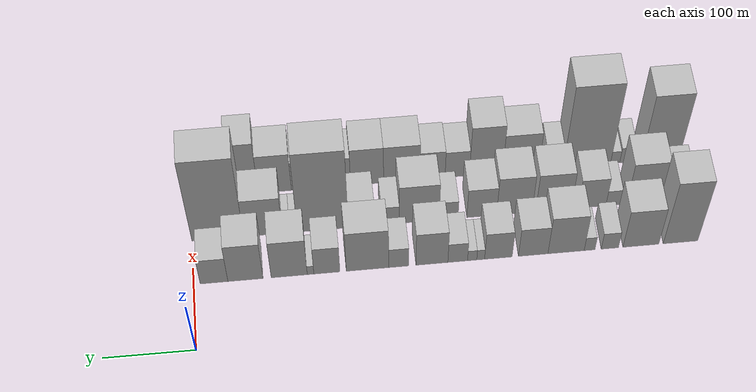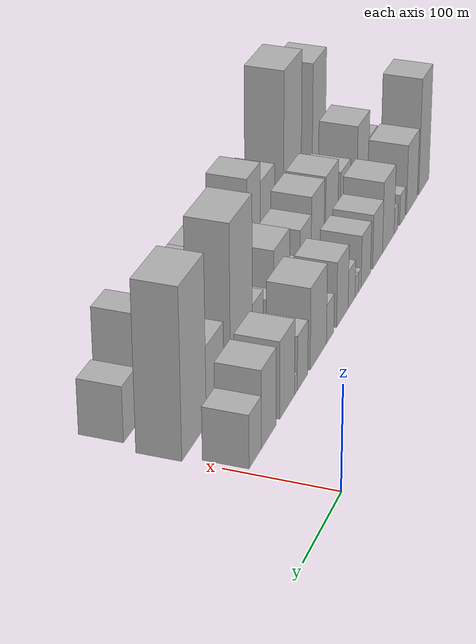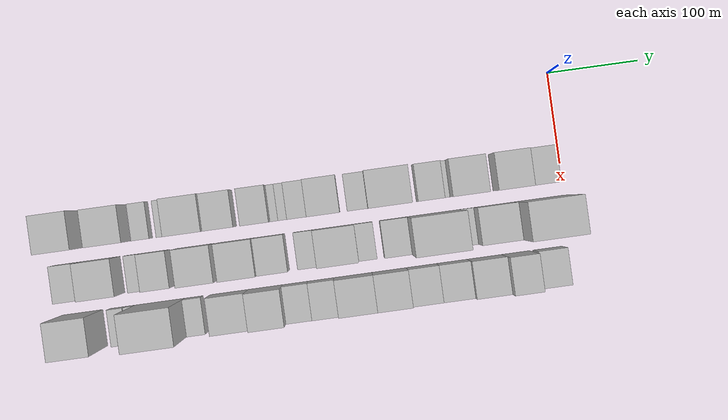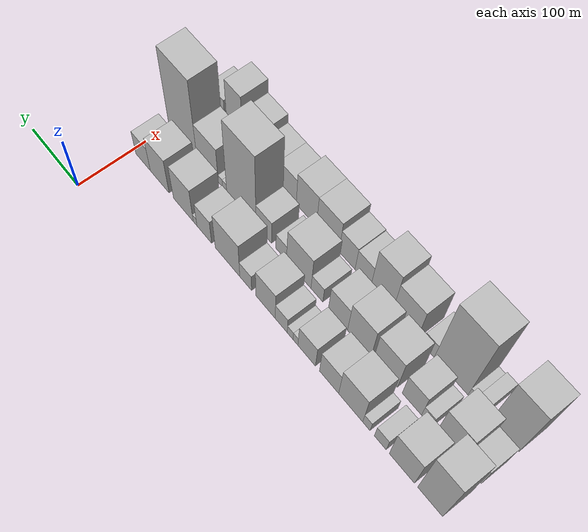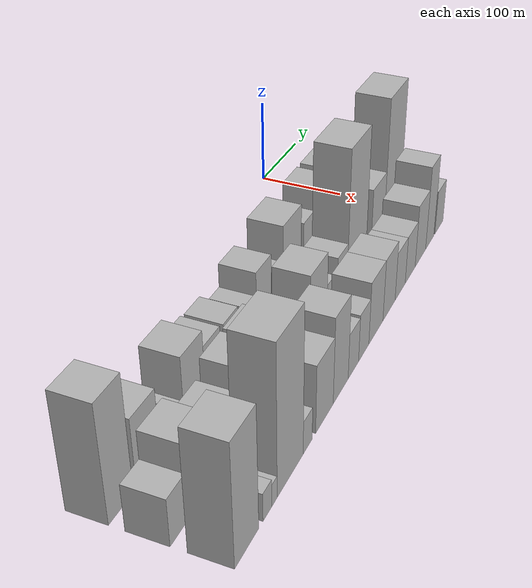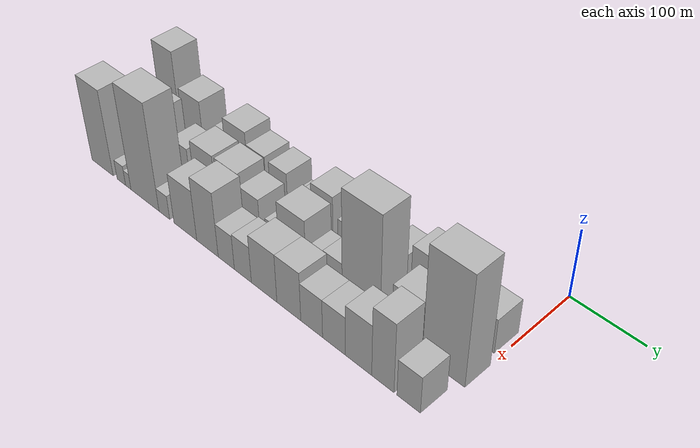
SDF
<sdf version="1.6">
 <world name="default">
  <model name="building_1">
   <static>1</static>
   <pose>100.0000 -540.5387 0 0.000000 0.000000 0.000000</pose>
   <link name="link">
    <pose>0 0 63.00 0 0 0</pose>
    <collision name="collision"><geometry><box><size>40.0000 38.9227 126.0000</size></box></geometry></collision>
    <visual name="visual">
     <cast_shadows>0</cast_shadows>
     <geometry><box><size>40.0000 38.9227 126.0000</size></box></geometry>
     <material>
      <script>
       <uri>model://HANNAS_wall/materials/scripts</uri>
       <uri>model://HANNAS_wall/materials/textures</uri>
       <name>vrc/HANNAS_wall</name>
      </script>
     </material>
    </visual>
   </link>
  </model>
  <model name="building_2">
   <static>1</static>
   <pose>100.0000 -495.9135 0 0.000000 0.000000 0.000000</pose>
   <link name="link">
    <pose>0 0 37.50 0 0 0</pose>
    <collision name="collision"><geometry><box><size>40.0000 40.3277 75.0000</size></box></geometry></collision>
    <visual name="visual">
     <cast_shadows>0</cast_shadows>
     <geometry><box><size>40.0000 40.3277 75.0000</size></box></geometry>
     <material>
      <script>
       <uri>model://HANNAS_wall/materials/scripts</uri>
       <uri>model://HANNAS_wall/materials/textures</uri>
       <name>vrc/HANNAS_wall</name>
      </script>
     </material>
    </visual>
   </link>
  </model>
  <model name="building_3">
   <static>1</static>
   <pose>100.0000 -461.0512 0 0.000000 0.000000 0.000000</pose>
   <link name="link">
    <pose>0 0 16.50 0 0 0</pose>
    <collision name="collision"><geometry><box><size>40.0000 19.3968 33.0000</size></box></geometry></collision>
    <visual name="visual">
     <cast_shadows>0</cast_shadows>
     <geometry><box><size>40.0000 19.3968 33.0000</size></box></geometry>
     <material>
      <script>
       <uri>model://HANNAS_wall/materials/scripts</uri>
       <uri>model://HANNAS_wall/materials/textures</uri>
       <name>vrc/HANNAS_wall</name>
      </script>
     </material>
    </visual>
   </link>
  </model>
  <model name="building_4">
   <static>1</static>
   <pose>100.0000 -438.2923 0 0.000000 0.000000 0.000000</pose>
   <link name="link">
    <pose>0 0 13.50 0 0 0</pose>
    <collision name="collision"><geometry><box><size>40.0000 12.1210 27.0000</size></box></geometry></collision>
    <visual name="visual">
     <cast_shadows>0</cast_shadows>
     <geometry><box><size>40.0000 12.1210 27.0000</size></box></geometry>
     <material>
      <script>
       <uri>model://HANNAS_wall/materials/scripts</uri>
       <uri>model://HANNAS_wall/materials/textures</uri>
       <name>vrc/HANNAS_wall</name>
      </script>
     </material>
    </visual>
   </link>
  </model>
  <model name="building_5">
   <static>1</static>
   <pose>100.0000 -411.9561 0 0.000000 0.000000 0.000000</pose>
   <link name="link">
    <pose>0 0 37.50 0 0 0</pose>
    <collision name="collision"><geometry><box><size>40.0000 40.5515 75.0000</size></box></geometry></collision>
    <visual name="visual">
     <cast_shadows>0</cast_shadows>
     <geometry><box><size>40.0000 40.5515 75.0000</size></box></geometry>
     <material>
      <script>
       <uri>model://HANNAS_wall/materials/scripts</uri>
       <uri>model://HANNAS_wall/materials/textures</uri>
       <name>vrc/HANNAS_wall</name>
      </script>
     </material>
    </visual>
   </link>
  </model>
  <model name="building_6">
   <static>1</static>
   <pose>100.0000 -375.1806 0 0.000000 0.000000 0.000000</pose>
   <link name="link">
    <pose>0 0 28.50 0 0 0</pose>
    <collision name="collision"><geometry><box><size>40.0000 32.9994 57.0000</size></box></geometry></collision>
    <visual name="visual">
     <cast_shadows>0</cast_shadows>
     <geometry><box><size>40.0000 32.9994 57.0000</size></box></geometry>
     <material>
      <script>
       <uri>model://HANNAS_wall/materials/scripts</uri>
       <uri>model://HANNAS_wall/materials/textures</uri>
       <name>vrc/HANNAS_wall</name>
      </script>
     </material>
    </visual>
   </link>
  </model>
  <model name="building_7">
   <static>1</static>
   <pose>100.0000 -336.2837 0 0.000000 0.000000 0.000000</pose>
   <link name="link">
    <pose>0 0 27.00 0 0 0</pose>
    <collision name="collision"><geometry><box><size>40.0000 30.7946 54.0000</size></box></geometry></collision>
    <visual name="visual">
     <cast_shadows>0</cast_shadows>
     <geometry><box><size>40.0000 30.7946 54.0000</size></box></geometry>
     <material>
      <script>
       <uri>model://HANNAS_wall/materials/scripts</uri>
       <uri>model://HANNAS_wall/materials/textures</uri>
       <name>vrc/HANNAS_wall</name>
      </script>
     </material>
    </visual>
   </link>
  </model>
  <model name="building_8">
   <static>1</static>
   <pose>100.0000 -316.5640 0 0.000000 0.000000 0.000000</pose>
   <link name="link">
    <pose>0 0 10.50 0 0 0</pose>
    <collision name="collision"><geometry><box><size>40.0000 8.6448 21.0000</size></box></geometry></collision>
    <visual name="visual">
     <cast_shadows>0</cast_shadows>
     <geometry><box><size>40.0000 8.6448 21.0000</size></box></geometry>
     <material>
      <script>
       <uri>model://HANNAS_wall/materials/scripts</uri>
       <uri>model://HANNAS_wall/materials/textures</uri>
       <name>vrc/HANNAS_wall</name>
      </script>
     </material>
    </visual>
   </link>
  </model>
  <model name="building_9">
   <static>1</static>
   <pose>100.0000 -307.0774 0 0.000000 0.000000 0.000000</pose>
   <link name="link">
    <pose>0 0 10.50 0 0 0</pose>
    <collision name="collision"><geometry><box><size>40.0000 10.3283 21.0000</size></box></geometry></collision>
    <visual name="visual">
     <cast_shadows>0</cast_shadows>
     <geometry><box><size>40.0000 10.3283 21.0000</size></box></geometry>
     <material>
      <script>
       <uri>model://HANNAS_wall/materials/scripts</uri>
       <uri>model://HANNAS_wall/materials/textures</uri>
       <name>vrc/HANNAS_wall</name>
      </script>
     </material>
    </visual>
   </link>
  </model>
  <model name="building_10">
   <static>1</static>
   <pose>100.0000 -291.0015 0 0.000000 0.000000 0.000000</pose>
   <link name="link">
    <pose>0 0 19.50 0 0 0</pose>
    <collision name="collision"><geometry><box><size>40.0000 21.8234 39.0000</size></box></geometry></collision>
    <visual name="visual">
     <cast_shadows>0</cast_shadows>
     <geometry><box><size>40.0000 21.8234 39.0000</size></box></geometry>
     <material>
      <script>
       <uri>model://HANNAS_wall/materials/scripts</uri>
       <uri>model://HANNAS_wall/materials/textures</uri>
       <name>vrc/HANNAS_wall</name>
      </script>
     </material>
    </visual>
   </link>
  </model>
  <model name="building_11">
   <static>1</static>
   <pose>100.0000 -262.3739 0 0.000000 0.000000 0.000000</pose>
   <link name="link">
    <pose>0 0 33.00 0 0 0</pose>
    <collision name="collision"><geometry><box><size>40.0000 35.4319 66.0000</size></box></geometry></collision>
    <visual name="visual">
     <cast_shadows>0</cast_shadows>
     <geometry><box><size>40.0000 35.4319 66.0000</size></box></geometry>
     <material>
      <script>
       <uri>model://HANNAS_wall/materials/scripts</uri>
       <uri>model://HANNAS_wall/materials/textures</uri>
       <name>vrc/HANNAS_wall</name>
      </script>
     </material>
    </visual>
   </link>
  </model>
  <model name="building_12">
   <static>1</static>
   <pose>100.0000 -225.5796 0 0.000000 0.000000 0.000000</pose>
   <link name="link">
    <pose>0 0 19.50 0 0 0</pose>
    <collision name="collision"><geometry><box><size>40.0000 22.1568 39.0000</size></box></geometry></collision>
    <visual name="visual">
     <cast_shadows>0</cast_shadows>
     <geometry><box><size>40.0000 22.1568 39.0000</size></box></geometry>
     <material>
      <script>
       <uri>model://HANNAS_wall/materials/scripts</uri>
       <uri>model://HANNAS_wall/materials/textures</uri>
       <name>vrc/HANNAS_wall</name>
      </script>
     </material>
    </visual>
   </link>
  </model>
  <model name="building_13">
   <static>1</static>
   <pose>100.0000 -191.0283 0 0.000000 0.000000 0.000000</pose>
   <link name="link">
    <pose>0 0 40.50 0 0 0</pose>
    <collision name="collision"><geometry><box><size>40.0000 46.9458 81.0000</size></box></geometry></collision>
    <visual name="visual">
     <cast_shadows>0</cast_shadows>
     <geometry><box><size>40.0000 46.9458 81.0000</size></box></geometry>
     <material>
      <script>
       <uri>model://HANNAS_wall/materials/scripts</uri>
       <uri>model://HANNAS_wall/materials/textures</uri>
       <name>vrc/HANNAS_wall</name>
      </script>
     </material>
    </visual>
   </link>
  </model>
  <model name="building_14">
   <static>1</static>
   <pose>100.0000 -146.1428 0 0.000000 0.000000 0.000000</pose>
   <link name="link">
    <pose>0 0 27.00 0 0 0</pose>
    <collision name="collision"><geometry><box><size>40.0000 28.8254 54.0000</size></box></geometry></collision>
    <visual name="visual">
     <cast_shadows>0</cast_shadows>
     <geometry><box><size>40.0000 28.8254 54.0000</size></box></geometry>
     <material>
      <script>
       <uri>model://HANNAS_wall/materials/scripts</uri>
       <uri>model://HANNAS_wall/materials/textures</uri>
       <name>vrc/HANNAS_wall</name>
      </script>
     </material>
    </visual>
   </link>
  </model>
  <model name="building_15">
   <static>1</static>
   <pose>100.0000 -128.1145 0 0.000000 0.000000 0.000000</pose>
   <link name="link">
    <pose>0 0 9.00 0 0 0</pose>
    <collision name="collision"><geometry><box><size>40.0000 7.2312 18.0000</size></box></geometry></collision>
    <visual name="visual">
     <cast_shadows>0</cast_shadows>
     <geometry><box><size>40.0000 7.2312 18.0000</size></box></geometry>
     <material>
      <script>
       <uri>model://HANNAS_wall/materials/scripts</uri>
       <uri>model://HANNAS_wall/materials/textures</uri>
       <name>vrc/HANNAS_wall</name>
      </script>
     </material>
    </visual>
   </link>
  </model>
  <model name="building_16">
   <static>1</static>
   <pose>100.0000 -104.6815 0 0.000000 0.000000 0.000000</pose>
   <link name="link">
    <pose>0 0 37.50 0 0 0</pose>
    <collision name="collision"><geometry><box><size>40.0000 39.6347 75.0000</size></box></geometry></collision>
    <visual name="visual">
     <cast_shadows>0</cast_shadows>
     <geometry><box><size>40.0000 39.6347 75.0000</size></box></geometry>
     <material>
      <script>
       <uri>model://HANNAS_wall/materials/scripts</uri>
       <uri>model://HANNAS_wall/materials/textures</uri>
       <name>vrc/HANNAS_wall</name>
      </script>
     </material>
    </visual>
   </link>
  </model>
  <model name="building_17">
   <static>1</static>
   <pose>100.0000 -56.6008 0 0.000000 0.000000 0.000000</pose>
   <link name="link">
    <pose>0 0 37.50 0 0 0</pose>
    <collision name="collision"><geometry><box><size>40.0000 38.5268 75.0000</size></box></geometry></collision>
    <visual name="visual">
     <cast_shadows>0</cast_shadows>
     <geometry><box><size>40.0000 38.5268 75.0000</size></box></geometry>
     <material>
      <script>
       <uri>model://HANNAS_wall/materials/scripts</uri>
       <uri>model://HANNAS_wall/materials/textures</uri>
       <name>vrc/HANNAS_wall</name>
      </script>
     </material>
    </visual>
   </link>
  </model>
  <model name="building_18">
   <static>1</static>
   <pose>100.0000 -22.1608 0 0.000000 0.000000 0.000000</pose>
   <link name="link">
    <pose>0 0 25.50 0 0 0</pose>
    <collision name="collision"><geometry><box><size>40.0000 30.3531 51.0000</size></box></geometry></collision>
    <visual name="visual">
     <cast_shadows>0</cast_shadows>
     <geometry><box><size>40.0000 30.3531 51.0000</size></box></geometry>
     <material>
      <script>
       <uri>model://HANNAS_wall/materials/scripts</uri>
       <uri>model://HANNAS_wall/materials/textures</uri>
       <name>vrc/HANNAS_wall</name>
      </script>
     </material>
    </visual>
   </link>
  </model>
  <model name="building_37">
   <static>1</static>
   <pose>155.0000 -545.2110 0 0.000000 0.000000 0.000000</pose>
   <link name="link">
    <pose>0 0 25.50 0 0 0</pose>
    <collision name="collision"><geometry><box><size>40.0000 29.5780 51.0000</size></box></geometry></collision>
    <visual name="visual">
     <cast_shadows>0</cast_shadows>
     <geometry><box><size>40.0000 29.5780 51.0000</size></box></geometry>
     <material>
      <script>
       <uri>model://HANNAS_wall/materials/scripts</uri>
       <uri>model://HANNAS_wall/materials/textures</uri>
       <name>vrc/HANNAS_wall</name>
      </script>
     </material>
    </visual>
   </link>
  </model>
  <model name="building_38">
   <static>1</static>
   <pose>155.0000 -509.9299 0 0.000000 0.000000 0.000000</pose>
   <link name="link">
    <pose>0 0 40.50 0 0 0</pose>
    <collision name="collision"><geometry><box><size>40.0000 40.9843 81.0000</size></box></geometry></collision>
    <visual name="visual">
     <cast_shadows>0</cast_shadows>
     <geometry><box><size>40.0000 40.9843 81.0000</size></box></geometry>
     <material>
      <script>
       <uri>model://HANNAS_wall/materials/scripts</uri>
       <uri>model://HANNAS_wall/materials/textures</uri>
       <name>vrc/HANNAS_wall</name>
      </script>
     </material>
    </visual>
   </link>
  </model>
  <model name="building_39">
   <static>1</static>
   <pose>155.0000 -474.0493 0 0.000000 0.000000 0.000000</pose>
   <link name="link">
    <pose>0 0 15.00 0 0 0</pose>
    <collision name="collision"><geometry><box><size>40.0000 16.7770 30.0000</size></box></geometry></collision>
    <visual name="visual">
     <cast_shadows>0</cast_shadows>
     <geometry><box><size>40.0000 16.7770 30.0000</size></box></geometry>
     <material>
      <script>
       <uri>model://HANNAS_wall/materials/scripts</uri>
       <uri>model://HANNAS_wall/materials/textures</uri>
       <name>vrc/HANNAS_wall</name>
      </script>
     </material>
    </visual>
   </link>
  </model>
  <model name="building_40">
   <static>1</static>
   <pose>155.0000 -449.9052 0 0.000000 0.000000 0.000000</pose>
   <link name="link">
    <pose>0 0 28.50 0 0 0</pose>
    <collision name="collision"><geometry><box><size>40.0000 31.5112 57.0000</size></box></geometry></collision>
    <visual name="visual">
     <cast_shadows>0</cast_shadows>
     <geometry><box><size>40.0000 31.5112 57.0000</size></box></geometry>
     <material>
      <script>
       <uri>model://HANNAS_wall/materials/scripts</uri>
       <uri>model://HANNAS_wall/materials/textures</uri>
       <name>vrc/HANNAS_wall</name>
      </script>
     </material>
    </visual>
   </link>
  </model>
  <model name="building_41">
   <static>1</static>
   <pose>155.0000 -405.9209 0 0.000000 0.000000 0.000000</pose>
   <link name="link">
    <pose>0 0 37.50 0 0 0</pose>
    <collision name="collision"><geometry><box><size>40.0000 40.4575 75.0000</size></box></geometry></collision>
    <visual name="visual">
     <cast_shadows>0</cast_shadows>
     <geometry><box><size>40.0000 40.4575 75.0000</size></box></geometry>
     <material>
      <script>
       <uri>model://HANNAS_wall/materials/scripts</uri>
       <uri>model://HANNAS_wall/materials/textures</uri>
       <name>vrc/HANNAS_wall</name>
      </script>
     </material>
    </visual>
   </link>
  </model>
  <model name="building_42">
   <static>1</static>
   <pose>155.0000 -361.5441 0 0.000000 0.000000 0.000000</pose>
   <link name="link">
    <pose>0 0 37.50 0 0 0</pose>
    <collision name="collision"><geometry><box><size>40.0000 40.2959 75.0000</size></box></geometry></collision>
    <visual name="visual">
     <cast_shadows>0</cast_shadows>
     <geometry><box><size>40.0000 40.2959 75.0000</size></box></geometry>
     <material>
      <script>
       <uri>model://HANNAS_wall/materials/scripts</uri>
       <uri>model://HANNAS_wall/materials/textures</uri>
       <name>vrc/HANNAS_wall</name>
      </script>
     </material>
    </visual>
   </link>
  </model>
  <model name="building_43">
   <static>1</static>
   <pose>155.0000 -324.6155 0 0.000000 0.000000 0.000000</pose>
   <link name="link">
    <pose>0 0 28.50 0 0 0</pose>
    <collision name="collision"><geometry><box><size>40.0000 33.5614 57.0000</size></box></geometry></collision>
    <visual name="visual">
     <cast_shadows>0</cast_shadows>
     <geometry><box><size>40.0000 33.5614 57.0000</size></box></geometry>
     <material>
      <script>
       <uri>model://HANNAS_wall/materials/scripts</uri>
       <uri>model://HANNAS_wall/materials/textures</uri>
       <name>vrc/HANNAS_wall</name>
      </script>
     </material>
    </visual>
   </link>
  </model>
  <model name="building_44">
   <static>1</static>
   <pose>155.0000 -287.1932 0 0.000000 0.000000 0.000000</pose>
   <link name="link">
    <pose>0 0 18.00 0 0 0</pose>
    <collision name="collision"><geometry><box><size>40.0000 21.2831 36.0000</size></box></geometry></collision>
    <visual name="visual">
     <cast_shadows>0</cast_shadows>
     <geometry><box><size>40.0000 21.2831 36.0000</size></box></geometry>
     <material>
      <script>
       <uri>model://HANNAS_wall/materials/scripts</uri>
       <uri>model://HANNAS_wall/materials/textures</uri>
       <name>vrc/HANNAS_wall</name>
      </script>
     </material>
    </visual>
   </link>
  </model>
  <model name="building_45">
   <static>1</static>
   <pose>155.0000 -254.1375 0 0.000000 0.000000 0.000000</pose>
   <link name="link">
    <pose>0 0 37.50 0 0 0</pose>
    <collision name="collision"><geometry><box><size>40.0000 44.8283 75.0000</size></box></geometry></collision>
    <visual name="visual">
     <cast_shadows>0</cast_shadows>
     <geometry><box><size>40.0000 44.8283 75.0000</size></box></geometry>
     <material>
      <script>
       <uri>model://HANNAS_wall/materials/scripts</uri>
       <uri>model://HANNAS_wall/materials/textures</uri>
       <name>vrc/HANNAS_wall</name>
      </script>
     </material>
    </visual>
   </link>
  </model>
  <model name="building_46">
   <static>1</static>
   <pose>155.0000 -221.7495 0 0.000000 0.000000 0.000000</pose>
   <link name="link">
    <pose>0 0 18.00 0 0 0</pose>
    <collision name="collision"><geometry><box><size>40.0000 19.9477 36.0000</size></box></geometry></collision>
    <visual name="visual">
     <cast_shadows>0</cast_shadows>
     <geometry><box><size>40.0000 19.9477 36.0000</size></box></geometry>
     <material>
      <script>
       <uri>model://HANNAS_wall/materials/scripts</uri>
       <uri>model://HANNAS_wall/materials/textures</uri>
       <name>vrc/HANNAS_wall</name>
      </script>
     </material>
    </visual>
   </link>
  </model>
  <model name="building_47">
   <static>1</static>
   <pose>155.0000 -189.0894 0 0.000000 0.000000 0.000000</pose>
   <link name="link">
    <pose>0 0 25.50 0 0 0</pose>
    <collision name="collision"><geometry><box><size>40.0000 29.3726 51.0000</size></box></geometry></collision>
    <visual name="visual">
     <cast_shadows>0</cast_shadows>
     <geometry><box><size>40.0000 29.3726 51.0000</size></box></geometry>
     <material>
      <script>
       <uri>model://HANNAS_wall/materials/scripts</uri>
       <uri>model://HANNAS_wall/materials/textures</uri>
       <name>vrc/HANNAS_wall</name>
      </script>
     </material>
    </visual>
   </link>
  </model>
  <model name="building_48">
   <static>1</static>
   <pose>155.0000 -145.8707 0 0.000000 0.000000 0.000000</pose>
   <link name="link">
    <pose>0 0 79.50 0 0 0</pose>
    <collision name="collision"><geometry><box><size>40.0000 57.0646 159.0000</size></box></geometry></collision>
    <visual name="visual">
     <cast_shadows>0</cast_shadows>
     <geometry><box><size>40.0000 57.0646 159.0000</size></box></geometry>
     <material>
      <script>
       <uri>model://HANNAS_wall/materials/scripts</uri>
       <uri>model://HANNAS_wall/materials/textures</uri>
       <name>vrc/HANNAS_wall</name>
      </script>
     </material>
    </visual>
   </link>
  </model>
  <model name="building_49">
   <static>1</static>
   <pose>155.0000 -113.1557 0 0.000000 0.000000 0.000000</pose>
   <link name="link">
    <pose>0 0 9.00 0 0 0</pose>
    <collision name="collision"><geometry><box><size>40.0000 8.3654 18.0000</size></box></geometry></collision>
    <visual name="visual">
     <cast_shadows>0</cast_shadows>
     <geometry><box><size>40.0000 8.3654 18.0000</size></box></geometry>
     <material>
      <script>
       <uri>model://HANNAS_wall/materials/scripts</uri>
       <uri>model://HANNAS_wall/materials/textures</uri>
       <name>vrc/HANNAS_wall</name>
      </script>
     </material>
    </visual>
   </link>
  </model>
  <model name="building_50">
   <static>1</static>
   <pose>155.0000 -104.8745 0 0.000000 0.000000 0.000000</pose>
   <link name="link">
    <pose>0 0 9.00 0 0 0</pose>
    <collision name="collision"><geometry><box><size>40.0000 8.1972 18.0000</size></box></geometry></collision>
    <visual name="visual">
     <cast_shadows>0</cast_shadows>
     <geometry><box><size>40.0000 8.1972 18.0000</size></box></geometry>
     <material>
      <script>
       <uri>model://HANNAS_wall/materials/scripts</uri>
       <uri>model://HANNAS_wall/materials/textures</uri>
       <name>vrc/HANNAS_wall</name>
      </script>
     </material>
    </visual>
   </link>
  </model>
  <model name="building_51">
   <static>1</static>
   <pose>155.0000 -79.0919 0 0.000000 0.000000 0.000000</pose>
   <link name="link">
    <pose>0 0 37.50 0 0 0</pose>
    <collision name="collision"><geometry><box><size>40.0000 43.3679 75.0000</size></box></geometry></collision>
    <visual name="visual">
     <cast_shadows>0</cast_shadows>
     <geometry><box><size>40.0000 43.3679 75.0000</size></box></geometry>
     <material>
      <script>
       <uri>model://HANNAS_wall/materials/scripts</uri>
       <uri>model://HANNAS_wall/materials/textures</uri>
       <name>vrc/HANNAS_wall</name>
      </script>
     </material>
    </visual>
   </link>
  </model>
  <model name="building_52">
   <static>1</static>
   <pose>155.0000 -28.5713 0 0.000000 0.000000 0.000000</pose>
   <link name="link">
    <pose>0 0 81.00 0 0 0</pose>
    <collision name="collision"><geometry><box><size>40.0000 57.6732 162.0000</size></box></geometry></collision>
    <visual name="visual">
     <cast_shadows>0</cast_shadows>
     <geometry><box><size>40.0000 57.6732 162.0000</size></box></geometry>
     <material>
      <script>
       <uri>model://HANNAS_wall/materials/scripts</uri>
       <uri>model://HANNAS_wall/materials/textures</uri>
       <name>vrc/HANNAS_wall</name>
      </script>
     </material>
    </visual>
   </link>
  </model>
  <model name="building_67">
   <static>1</static>
   <pose>210.0000 -538.0053 0 0.000000 0.000000 0.000000</pose>
   <link name="link">
    <pose>0 0 64.50 0 0 0</pose>
    <collision name="collision"><geometry><box><size>40.0000 43.9895 129.0000</size></box></geometry></collision>
    <visual name="visual">
     <cast_shadows>0</cast_shadows>
     <geometry><box><size>40.0000 43.9895 129.0000</size></box></geometry>
     <material>
      <script>
       <uri>model://HANNAS_wall/materials/scripts</uri>
       <uri>model://HANNAS_wall/materials/textures</uri>
       <name>vrc/HANNAS_wall</name>
      </script>
     </material>
    </visual>
   </link>
  </model>
  <model name="building_68">
   <static>1</static>
   <pose>210.0000 -499.4448 0 0.000000 0.000000 0.000000</pose>
   <link name="link">
    <pose>0 0 15.00 0 0 0</pose>
    <collision name="collision"><geometry><box><size>40.0000 17.1314 30.0000</size></box></geometry></collision>
    <visual name="visual">
     <cast_shadows>0</cast_shadows>
     <geometry><box><size>40.0000 17.1314 30.0000</size></box></geometry>
     <material>
      <script>
       <uri>model://HANNAS_wall/materials/scripts</uri>
       <uri>model://HANNAS_wall/materials/textures</uri>
       <name>vrc/HANNAS_wall</name>
      </script>
     </material>
    </visual>
   </link>
  </model>
  <model name="building_69">
   <static>1</static>
   <pose>210.0000 -485.5426 0 0.000000 0.000000 0.000000</pose>
   <link name="link">
    <pose>0 0 12.00 0 0 0</pose>
    <collision name="collision"><geometry><box><size>40.0000 10.6730 24.0000</size></box></geometry></collision>
    <visual name="visual">
     <cast_shadows>0</cast_shadows>
     <geometry><box><size>40.0000 10.6730 24.0000</size></box></geometry>
     <material>
      <script>
       <uri>model://HANNAS_wall/materials/scripts</uri>
       <uri>model://HANNAS_wall/materials/textures</uri>
       <name>vrc/HANNAS_wall</name>
      </script>
     </material>
    </visual>
   </link>
  </model>
  <model name="building_70">
   <static>1</static>
   <pose>210.0000 -452.8374 0 0.000000 0.000000 0.000000</pose>
   <link name="link">
    <pose>0 0 79.50 0 0 0</pose>
    <collision name="collision"><geometry><box><size>40.0000 54.7375 159.0000</size></box></geometry></collision>
    <visual name="visual">
     <cast_shadows>0</cast_shadows>
     <geometry><box><size>40.0000 54.7375 159.0000</size></box></geometry>
     <material>
      <script>
       <uri>model://HANNAS_wall/materials/scripts</uri>
       <uri>model://HANNAS_wall/materials/textures</uri>
       <name>vrc/HANNAS_wall</name>
      </script>
     </material>
    </visual>
   </link>
  </model>
  <model name="building_71">
   <static>1</static>
   <pose>210.0000 -415.3926 0 0.000000 0.000000 0.000000</pose>
   <link name="link">
    <pose>0 0 18.00 0 0 0</pose>
    <collision name="collision"><geometry><box><size>40.0000 20.1520 36.0000</size></box></geometry></collision>
    <visual name="visual">
     <cast_shadows>0</cast_shadows>
     <geometry><box><size>40.0000 20.1520 36.0000</size></box></geometry>
     <material>
      <script>
       <uri>model://HANNAS_wall/materials/scripts</uri>
       <uri>model://HANNAS_wall/materials/textures</uri>
       <name>vrc/HANNAS_wall</name>
      </script>
     </material>
    </visual>
   </link>
  </model>
  <model name="building_72">
   <static>1</static>
   <pose>210.0000 -376.3944 0 0.000000 0.000000 0.000000</pose>
   <link name="link">
    <pose>0 0 37.50 0 0 0</pose>
    <collision name="collision"><geometry><box><size>40.0000 41.8446 75.0000</size></box></geometry></collision>
    <visual name="visual">
     <cast_shadows>0</cast_shadows>
     <geometry><box><size>40.0000 41.8446 75.0000</size></box></geometry>
     <material>
      <script>
       <uri>model://HANNAS_wall/materials/scripts</uri>
       <uri>model://HANNAS_wall/materials/textures</uri>
       <name>vrc/HANNAS_wall</name>
      </script>
     </material>
    </visual>
   </link>
  </model>
  <model name="building_73">
   <static>1</static>
   <pose>210.0000 -336.4230 0 0.000000 0.000000 0.000000</pose>
   <link name="link">
    <pose>0 0 48.00 0 0 0</pose>
    <collision name="collision"><geometry><box><size>40.0000 38.0981 96.0000</size></box></geometry></collision>
    <visual name="visual">
     <cast_shadows>0</cast_shadows>
     <geometry><box><size>40.0000 38.0981 96.0000</size></box></geometry>
     <material>
      <script>
       <uri>model://HANNAS_wall/materials/scripts</uri>
       <uri>model://HANNAS_wall/materials/textures</uri>
       <name>vrc/HANNAS_wall</name>
      </script>
     </material>
    </visual>
   </link>
  </model>
  <model name="building_74">
   <static>1</static>
   <pose>210.0000 -303.4327 0 0.000000 0.000000 0.000000</pose>
   <link name="link">
    <pose>0 0 25.50 0 0 0</pose>
    <collision name="collision"><geometry><box><size>40.0000 27.8825 51.0000</size></box></geometry></collision>
    <visual name="visual">
     <cast_shadows>0</cast_shadows>
     <geometry><box><size>40.0000 27.8825 51.0000</size></box></geometry>
     <material>
      <script>
       <uri>model://HANNAS_wall/materials/scripts</uri>
       <uri>model://HANNAS_wall/materials/textures</uri>
       <name>vrc/HANNAS_wall</name>
      </script>
     </material>
    </visual>
   </link>
  </model>
  <model name="building_75">
   <static>1</static>
   <pose>210.0000 -275.1838 0 0.000000 0.000000 0.000000</pose>
   <link name="link">
    <pose>0 0 27.00 0 0 0</pose>
    <collision name="collision"><geometry><box><size>40.0000 28.6153 54.0000</size></box></geometry></collision>
    <visual name="visual">
     <cast_shadows>0</cast_shadows>
     <geometry><box><size>40.0000 28.6153 54.0000</size></box></geometry>
     <material>
      <script>
       <uri>model://HANNAS_wall/materials/scripts</uri>
       <uri>model://HANNAS_wall/materials/textures</uri>
       <name>vrc/HANNAS_wall</name>
      </script>
     </material>
    </visual>
   </link>
  </model>
  <model name="building_76">
   <static>1</static>
   <pose>210.0000 -240.0690 0 0.000000 0.000000 0.000000</pose>
   <link name="link">
    <pose>0 0 36.00 0 0 0</pose>
    <collision name="collision"><geometry><box><size>40.0000 41.6143 72.0000</size></box></geometry></collision>
    <visual name="visual">
     <cast_shadows>0</cast_shadows>
     <geometry><box><size>40.0000 41.6143 72.0000</size></box></geometry>
     <material>
      <script>
       <uri>model://HANNAS_wall/materials/scripts</uri>
       <uri>model://HANNAS_wall/materials/textures</uri>
       <name>vrc/HANNAS_wall</name>
      </script>
     </material>
    </visual>
   </link>
  </model>
  <model name="building_77">
   <static>1</static>
   <pose>210.0000 -200.3891 0 0.000000 0.000000 0.000000</pose>
   <link name="link">
    <pose>0 0 36.00 0 0 0</pose>
    <collision name="collision"><geometry><box><size>40.0000 37.7454 72.0000</size></box></geometry></collision>
    <visual name="visual">
     <cast_shadows>0</cast_shadows>
     <geometry><box><size>40.0000 37.7454 72.0000</size></box></geometry>
     <material>
      <script>
       <uri>model://HANNAS_wall/materials/scripts</uri>
       <uri>model://HANNAS_wall/materials/textures</uri>
       <name>vrc/HANNAS_wall</name>
      </script>
     </material>
    </visual>
   </link>
  </model>
  <model name="building_78">
   <static>1</static>
   <pose>210.0000 -164.8781 0 0.000000 0.000000 0.000000</pose>
   <link name="link">
    <pose>0 0 28.50 0 0 0</pose>
    <collision name="collision"><geometry><box><size>40.0000 33.2767 57.0000</size></box></geometry></collision>
    <visual name="visual">
     <cast_shadows>0</cast_shadows>
     <geometry><box><size>40.0000 33.2767 57.0000</size></box></geometry>
     <material>
      <script>
       <uri>model://HANNAS_wall/materials/scripts</uri>
       <uri>model://HANNAS_wall/materials/textures</uri>
       <name>vrc/HANNAS_wall</name>
      </script>
     </material>
    </visual>
   </link>
  </model>
  <model name="building_79">
   <static>1</static>
   <pose>210.0000 -131.2787 0 0.000000 0.000000 0.000000</pose>
   <link name="link">
    <pose>0 0 28.50 0 0 0</pose>
    <collision name="collision"><geometry><box><size>40.0000 33.9219 57.0000</size></box></geometry></collision>
    <visual name="visual">
     <cast_shadows>0</cast_shadows>
     <geometry><box><size>40.0000 33.9219 57.0000</size></box></geometry>
     <material>
      <script>
       <uri>model://HANNAS_wall/materials/scripts</uri>
       <uri>model://HANNAS_wall/materials/textures</uri>
       <name>vrc/HANNAS_wall</name>
      </script>
     </material>
    </visual>
   </link>
  </model>
  <model name="building_80">
   <static>1</static>
   <pose>210.0000 -95.4666 0 0.000000 0.000000 0.000000</pose>
   <link name="link">
    <pose>0 0 37.50 0 0 0</pose>
    <collision name="collision"><geometry><box><size>40.0000 37.7024 75.0000</size></box></geometry></collision>
    <visual name="visual">
     <cast_shadows>0</cast_shadows>
     <geometry><box><size>40.0000 37.7024 75.0000</size></box></geometry>
     <material>
      <script>
       <uri>model://HANNAS_wall/materials/scripts</uri>
       <uri>model://HANNAS_wall/materials/textures</uri>
       <name>vrc/HANNAS_wall</name>
      </script>
     </material>
    </visual>
   </link>
  </model>
  <model name="building_81">
   <static>1</static>
   <pose>210.0000 -61.1420 0 0.000000 0.000000 0.000000</pose>
   <link name="link">
    <pose>0 0 51.00 0 0 0</pose>
    <collision name="collision"><geometry><box><size>40.0000 30.9468 102.0000</size></box></geometry></collision>
    <visual name="visual">
     <cast_shadows>0</cast_shadows>
     <geometry><box><size>40.0000 30.9468 102.0000</size></box></geometry>
     <material>
      <script>
       <uri>model://HANNAS_wall/materials/scripts</uri>
       <uri>model://HANNAS_wall/materials/textures</uri>
       <name>vrc/HANNAS_wall</name>
      </script>
     </material>
    </visual>
   </link>
  </model>
  <model name="building_82">
   <static>1</static>
   <pose>210.0000 -25.8707 0 0.000000 0.000000 0.000000</pose>
   <link name="link">
    <pose>0 0 27.00 0 0 0</pose>
    <collision name="collision"><geometry><box><size>40.0000 31.5958 54.0000</size></box></geometry></collision>
    <visual name="visual">
     <cast_shadows>0</cast_shadows>
     <geometry><box><size>40.0000 31.5958 54.0000</size></box></geometry>
     <material>
      <script>
       <uri>model://HANNAS_wall/materials/scripts</uri>
       <uri>model://HANNAS_wall/materials/textures</uri>
       <name>vrc/HANNAS_wall</name>
      </script>
     </material>
    </visual>
   </link>
  </model>
 </world>
</sdf>
